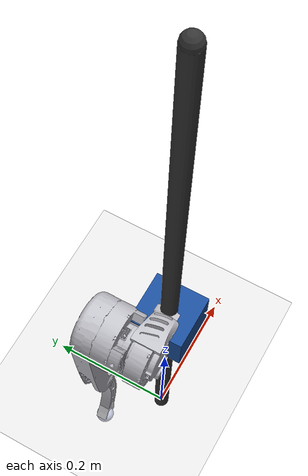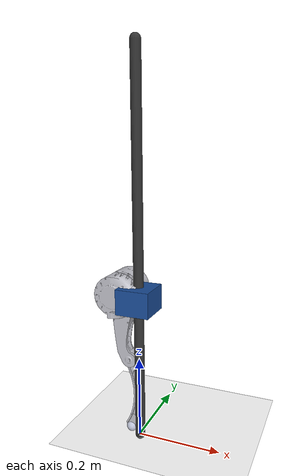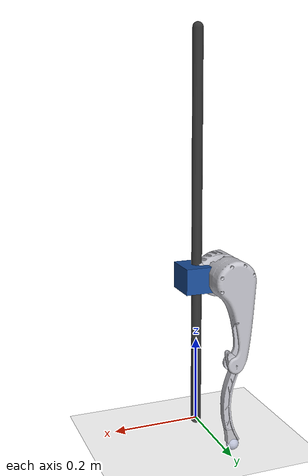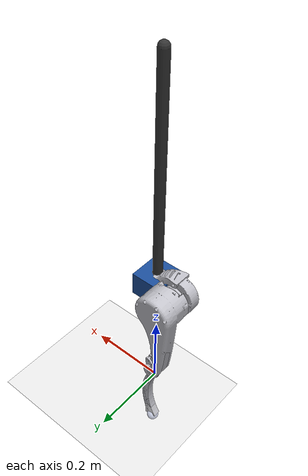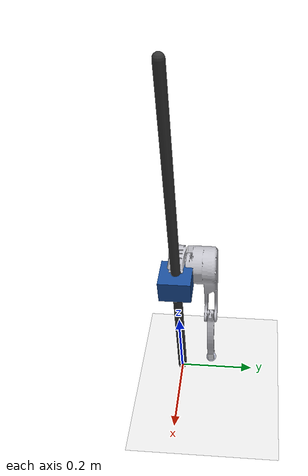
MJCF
<?xml version='1.0' encoding='utf-8'?>
<mujoco model="RL_single_leg_slider">
  <compiler angle="radian" meshdir="../custom_robot/meshes" />
  <asset><mesh name="RL_hip_visual_mesh" file="RL_hip.STL" /><mesh name="RL_thigh_visual_mesh" file="RL_thigh.STL" /><mesh name="RL_calf_visual_mesh" file="RL_calf.STL" /><mesh name="RL_foot_visual_mesh" file="RL_foot.STL" /></asset><worldbody>
    <body name="slider_link" pos="0 0 0.35">
      <inertial pos="0 0 0" mass="0.2" diaginertia="0.001 0.001 0.001" />
      <joint name="slider_z_joint" pos="0 0 0" axis="0 0 1" type="slide" range="-0.3 0.6" actuatorfrcrange="-100 100" />
      <body name="RL_hip" pos="0 0 0.002513">
        <inertial pos="-0.0473043 -0.0004014 -7.85e-05" quat="0.716285 -0.00340057 -0.0033594 0.697792" mass="0.290394" diaginertia="0.000331578 0.000216825 0.000174996" />
        <joint name="RL_hip_joint" pos="0 0 0" axis="1 0 0" range="-0.35 0.35" actuatorfrcrange="-8 8" />
        <body name="RL_thigh" pos="-0.0599992 0.0203992 0">
          <inertial pos="-0.0028225 0.0426963 -0.0252023" quat="0.708784 -0.0250879 -0.0296565 0.704355" mass="0.55367" diaginertia="0.00157436 0.00130961 0.000288333" />
          <joint name="RL_thigh_joint" pos="0 0 0" axis="0 1 0" range="-0.2 1.4" actuatorfrcrange="-8 8" />
          <body name="RL_calf" pos="0 0.05865 -0.194014">
            <inertial pos="0.00859349 3.09319e-06 -0.0880809" quat="0.706896 0.0169337 0.0169382 0.706912" mass="0.0922499" diaginertia="0.000474241 0.000468626 9.91523e-06" />
            <joint name="RL_calf_joint" pos="0 0 0" axis="0 1 0" range="-2.8 -1.2" actuatorfrcrange="-8 8" />
            <geom size="0.014796" pos="-1.26e-05 0 -0.19819" rgba="0.796078 0.823529 0.937255 1" name="RL_foot_contact_geom" />
          <geom name="RL_calf_visual" type="mesh" mesh="RL_calf_visual_mesh" contype="0" conaffinity="0" rgba="0.75 0.75 0.78 1" group="2" /></body>
        <geom name="RL_thigh_visual" type="mesh" mesh="RL_thigh_visual_mesh" contype="0" conaffinity="0" rgba="0.75 0.75 0.78 1" group="2" /></body>
      <geom name="RL_hip_visual" type="mesh" mesh="RL_hip_visual_mesh" contype="0" conaffinity="0" rgba="0.75 0.75 0.78 1" group="2" /></body>
    <geom name="slider_visual" type="box" size="0.04 0.04 0.03" rgba="0.1 0.3 0.6 1" contype="0" conaffinity="0" group="2" /></body>
  <geom name="floor" type="plane" pos="0 0 0" size="2 2 0.05" rgba="0.8 0.8 0.8 1" /><geom name="rail_visual" type="capsule" fromto="0.000000 0.000000 0.0 0.000000 0.000000 0.9" size="0.012" rgba="0.2 0.2 0.2 1" contype="0" conaffinity="0" group="2" /></worldbody>
<option timestep="0.002" gravity="0 0 -9.81" /><actuator><motor name="RL_hip_motor" joint="RL_hip_joint" gear="1" ctrllimited="true" ctrlrange="-8.0 8.0" /><motor name="RL_thigh_motor" joint="RL_thigh_joint" gear="1" ctrllimited="true" ctrlrange="-8.0 8.0" /><motor name="RL_calf_motor" joint="RL_calf_joint" gear="1" ctrllimited="true" ctrlrange="-8.0 8.0" /></actuator></mujoco>
